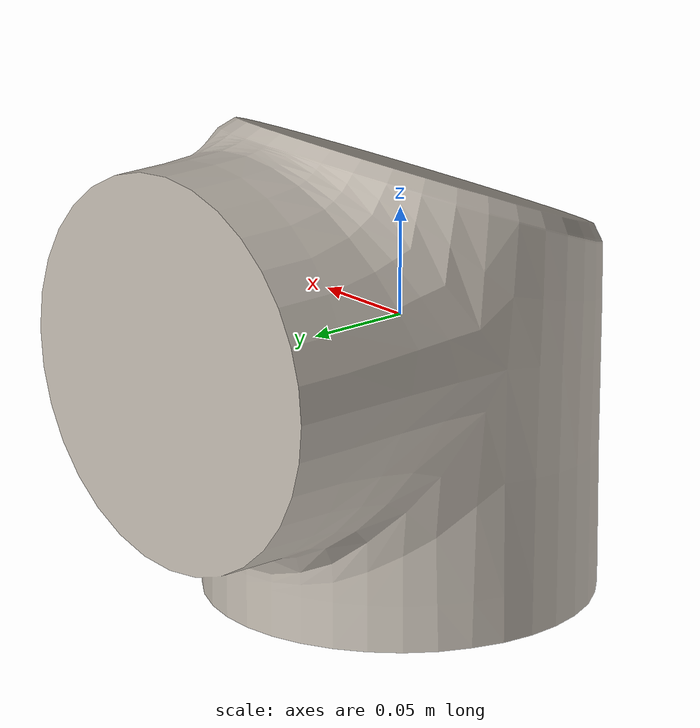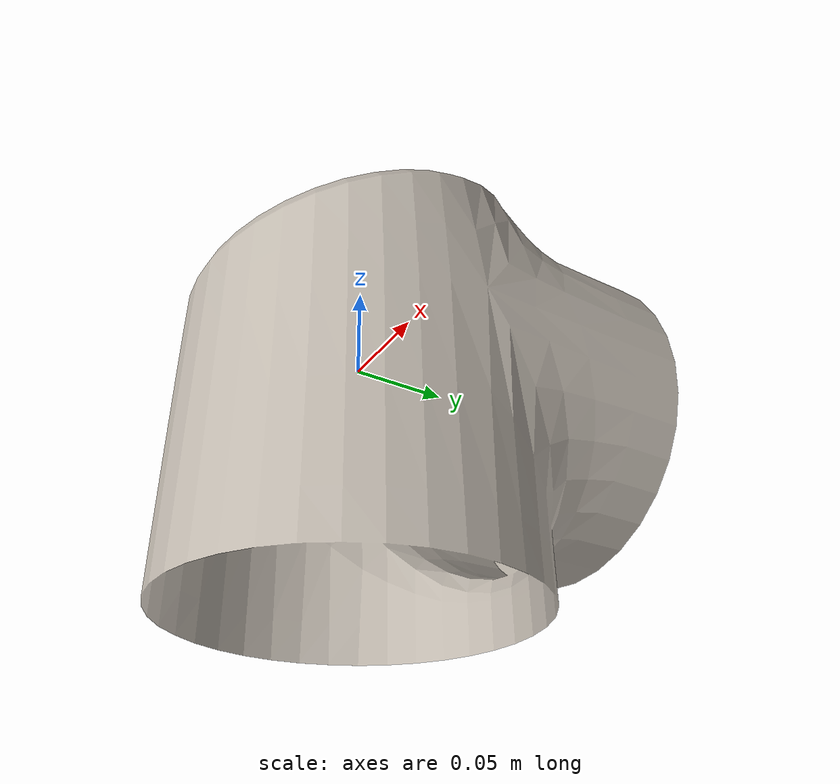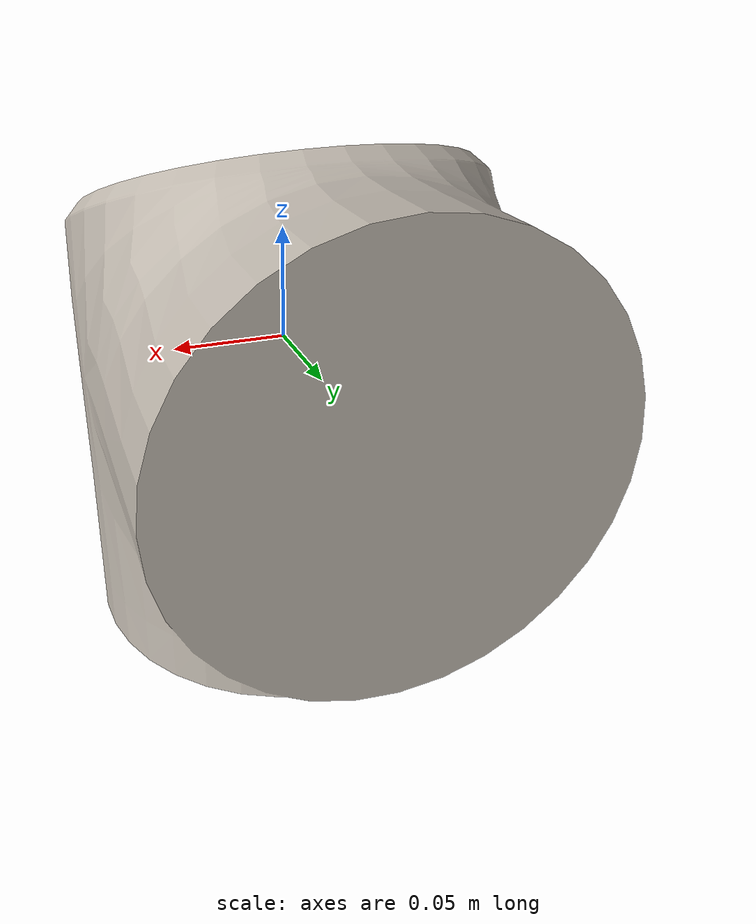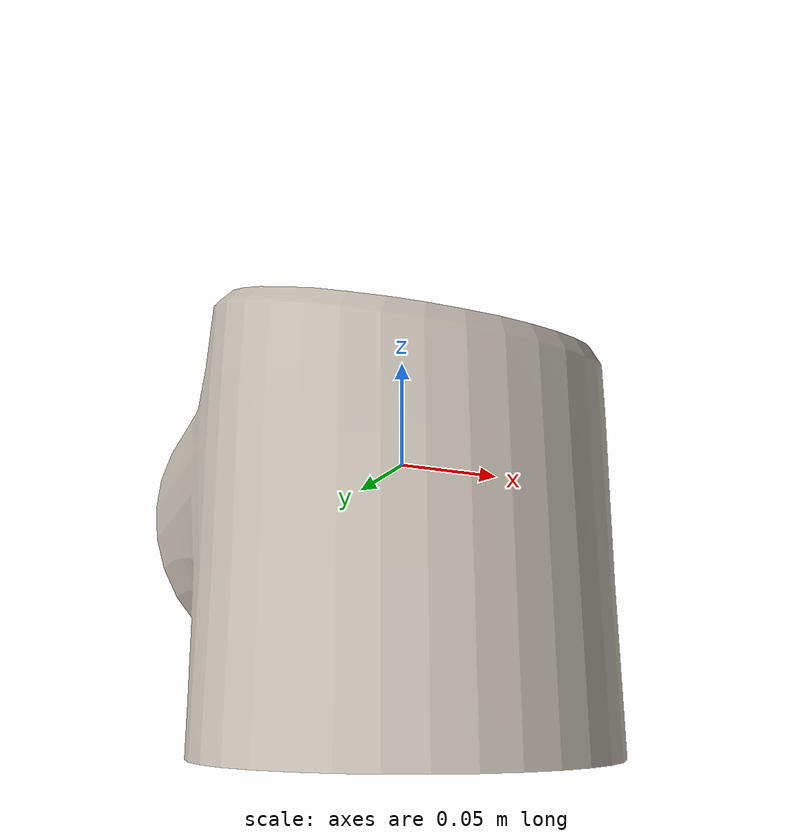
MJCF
<mujoco model="shoulder">
  <default>
    <default class="visual">
      <geom group="2" type="mesh" contype="0" conaffinity="0"/>
    </default>
    <default class="collision">
      <geom group="3" type="mesh"/>
    </default>
  </default>
  <asset>
    <texture type="2d" name="UR20_DIFF_8bit_2K" file="UR20_DIFF_8bit_2K.png"/>
    <material name="UR20_DIFF_8bit_2K_png" texture="UR20_DIFF_8bit_2K" specular="0.0" shininess="0.25"/>
    <mesh file="shoulder.obj"/>
  </asset>
  <worldbody>
    <body name="shoulder">
      <geom material="UR20_DIFF_8bit_2K_png" mesh="shoulder" class="visual"/>
      <geom mesh="shoulder" class="collision"/>
    </body>
  </worldbody>
</mujoco>
